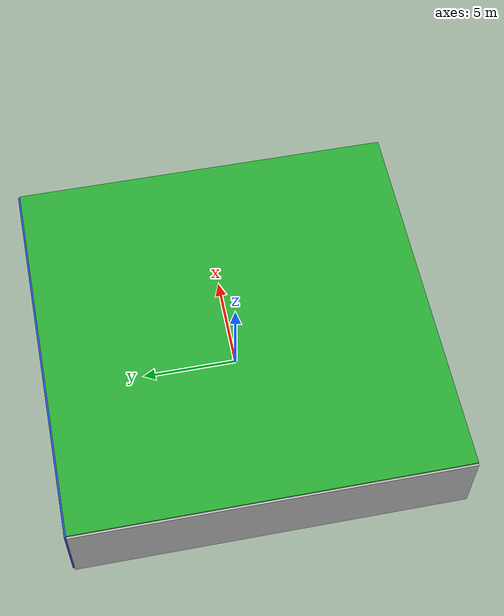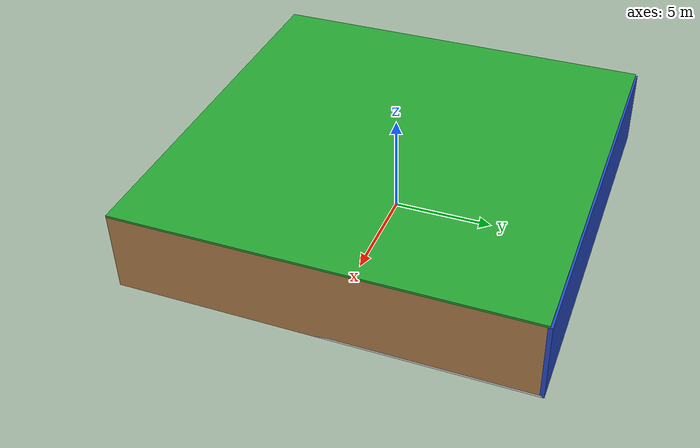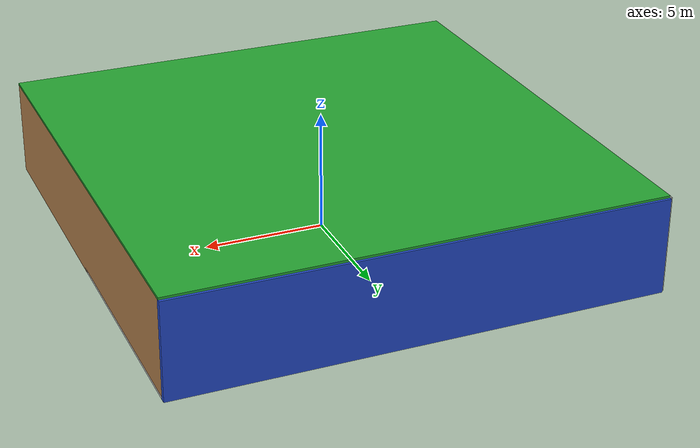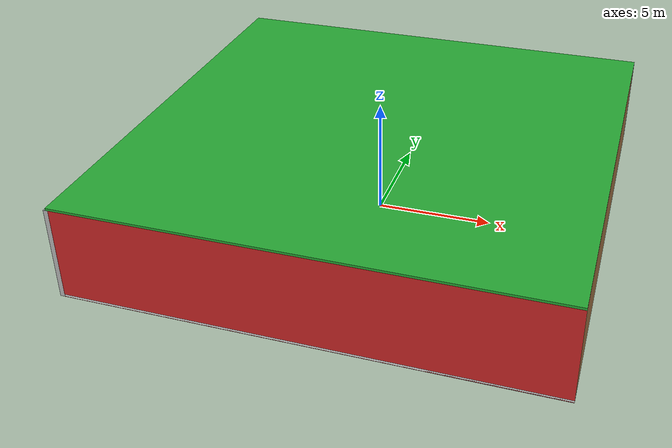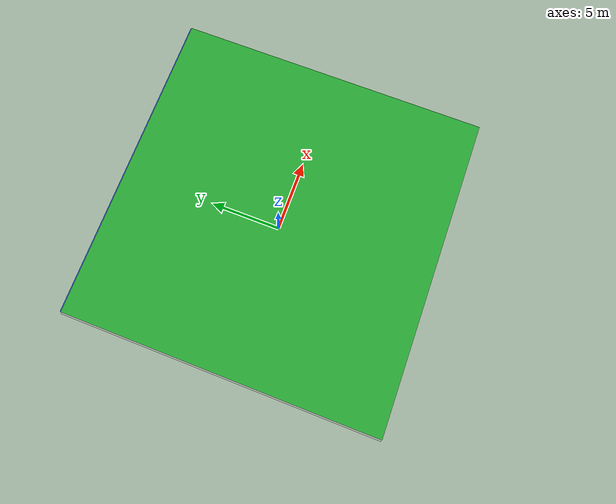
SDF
<sdf version="1.4">
 <world name="default">
  <physics type="ode">
   <max_step_size>0.001</max_step_size>
   <real_time_factor>1</real_time_factor>
   <real_time_update_rate>1000</real_time_update_rate>
   <gravity>0 0 -9.8</gravity>
  </physics>
  <scene><ambient>0.4 0.4 0.4 1</ambient><background>0.7 0.7 0.7 1</background><shadows>1</shadows></scene>
  <model name="Surrounding">
   <static>1</static>
   <link name="Ceiling">
    <collision name="Ceiling_Collision"><geometry><box><size>20 20 0.1</size></box></geometry></collision>
    <visual name="Ceiling_Visual">
     <geometry><box><size>20 20 0.1</size></box></geometry>
     <material>
      <script><uri>file://media/materials/scripts/gazebo.material</uri><name>Gazebo/GreenGlow</name></script>
     </material>
    </visual>
    <pose>0 0 4.05 0 0 0</pose>
   </link>
   <link name="Wall_South">
    <collision name="Wall_South_Collision">
     <geometry><box><size>20 0 4</size></box></geometry>
     <pose>0 0 2 0 -0 0</pose>
    </collision>
    <visual name="Wall_South_Visual">
     <pose>0 0 2 0 -0 0</pose>
     <geometry><box><size>20 0 4</size></box></geometry>
     <material>
      <script><uri>file://media/materials/scripts/gazebo.material</uri><name>Gazebo/RedBright</name></script>
     </material>
    </visual>
    <velocity_decay><linear>0</linear><angular>0</angular></velocity_decay>
    <pose>0 -10 0 0 -0 0</pose>
   </link>
   <link name="Wall_East">
    <collision name="Wall_21_Collision">
     <geometry><box><size>20 0 4</size></box></geometry>
     <pose>0 0 2 0 -0 0</pose>
    </collision>
    <visual name="Wall_21_Visual">
     <pose>0 0 2 0 -0 0</pose>
     <geometry><box><size>20 0 4</size></box></geometry>
     <material>
      <script><uri>file://media/materials/scripts/gazebo.material</uri><name>Gazebo/WoodPallet</name></script>
     </material>
    </visual>
    <velocity_decay><linear>0</linear><angular>0</angular></velocity_decay>
    <pose>10 0 0 0 -0 1.5708</pose>
   </link>
   <link name="Wall_North">
    <collision name="Wall_22_Collision">
     <geometry><box><size>20 0.2 4</size></box></geometry>
     <pose>0 0 2 0 -0 0</pose>
    </collision>
    <visual name="Wall_22_Visual">
     <pose>0 0 2 0 -0 0</pose>
     <geometry><box><size>20 0.2 4</size></box></geometry>
     <material>
      <script><uri>file://media/materials/scripts/gazebo.material</uri><name>Gazebo/BlueGlow</name></script>
     </material>
    </visual>
    <velocity_decay><linear>0</linear><angular>0</angular></velocity_decay>
    <pose>0 10 0 0 -0 0</pose>
   </link>
   <link name="Wall_West">
    <collision name="Wall_23_Collision">
     <geometry><box><size>20 0.2 4</size></box></geometry>
     <pose>0 0 2 0 -0 0</pose>
    </collision>
    <visual name="Wall_23_Visual">
     <pose>0 0 2 0 -0 0</pose>
     <geometry><box><size>20 0.2 4</size></box></geometry>
     <material>
      <script><uri>file://media/materials/scripts/gazebo.material</uri><name>Gazebo/LightOff</name></script>
     </material>
    </visual>
    <velocity_decay><linear>0</linear><angular>0</angular></velocity_decay>
    <pose>-10 0 0 0 0 -1.5708</pose>
   </link>
   <link name="Ground_link">
    <collision name="collision">
     <pose>0 0 .05 0 -0 0</pose>
     <geometry><box><size>20 20 0.1</size></box></geometry>
    </collision>
    <visual name="visual">
     <pose>0 0 .05 0 -0 0</pose>
     <geometry><box><size>20 20 0.1</size></box></geometry>
     <material>
      <script><uri>file://media/materials/scripts/gazebo.material</uri><name>Gazebo/White</name></script>
     </material>
    </visual>
   </link>
   <static>1</static>
  </model>
  <spherical_coordinates>
   <surface_model>EARTH_WGS84</surface_model>
   <latitude_deg>0</latitude_deg>
   <longitude_deg>0</longitude_deg>
   <elevation>0</elevation>
   <heading_deg>0</heading_deg>
  </spherical_coordinates>
  <light name="lightball_0" type="diffuse">
   <diffuse>0.8 0.8 0.8 1</diffuse>
   <specular>0.2 0.2 0.2 1</specular>
   <attenuation>
    <range>100</range>
    <constant>0.7</constant>
    <linear>0.01</linear>
    <quadratic>0.001</quadratic>
   </attenuation>
   <direction>-0.5 0.1 -0.9</direction>
   <pose>1.89588851692 5.2037381151 0.655257939682 0 0 0</pose>
  </light>
  <light name="lightball_1" type="diffuse">
   <diffuse>0.8 0.8 0.8 1</diffuse>
   <specular>0.2 0.2 0.2 1</specular>
   <attenuation>
    <range>100</range>
    <constant>0.7</constant>
    <linear>0.01</linear>
    <quadratic>0.001</quadratic>
   </attenuation>
   <direction>-0.5 0.1 -0.9</direction>
   <pose>-7.9566546883 -5.06341523095 1.10365518823 0 0 0</pose>
  </light>
  <light name="lightball_2" type="diffuse">
   <diffuse>0.8 0.8 0.8 1</diffuse>
   <specular>0.2 0.2 0.2 1</specular>
   <attenuation>
    <range>100</range>
    <constant>0.7</constant>
    <linear>0.01</linear>
    <quadratic>0.001</quadratic>
   </attenuation>
   <direction>-0.5 0.1 -0.9</direction>
   <pose>0.640305455092 -1.58228276388 0.539582211167 0 0 0</pose>
  </light>
  <light name="lightball_3" type="diffuse">
   <diffuse>0.8 0.8 0.8 1</diffuse>
   <specular>0.2 0.2 0.2 1</specular>
   <attenuation>
    <range>100</range>
    <constant>0.7</constant>
    <linear>0.01</linear>
    <quadratic>0.001</quadratic>
   </attenuation>
   <direction>-0.5 0.1 -0.9</direction>
   <pose>1.58287570362 -1.64407538414 3.64012470943 0 0 0</pose>
  </light>
  <light name="lightball_4" type="diffuse">
   <diffuse>0.8 0.8 0.8 1</diffuse>
   <specular>0.2 0.2 0.2 1</specular>
   <attenuation>
    <range>100</range>
    <constant>0.7</constant>
    <linear>0.01</linear>
    <quadratic>0.001</quadratic>
   </attenuation>
   <direction>-0.5 0.1 -0.9</direction>
   <pose>-3.55629008289 4.69993237804 1.40475894437 0 0 0</pose>
  </light>
  <light name="lightball_5" type="diffuse">
   <diffuse>0.8 0.8 0.8 1</diffuse>
   <specular>0.2 0.2 0.2 1</specular>
   <attenuation>
    <range>100</range>
    <constant>0.7</constant>
    <linear>0.01</linear>
    <quadratic>0.001</quadratic>
   </attenuation>
   <direction>-0.5 0.1 -0.9</direction>
   <pose>-6.37187548416 9.11452215034 1.61093923717 0 0 0</pose>
  </light>
  <include><uri>model://cabinet</uri><pose>-7.23088412858 2.61108496795 0 0 0 1.21390704371</pose></include>
  <include><uri>model://cabinet</uri><pose>-3.30625300994 -7.33004676195 0 0 0 1.83183008751</pose></include>
  <include><uri>model://cabinet</uri><pose>-3.58296735545 -1.24281193573 0 0 0 0.720528083896</pose></include>
  <include><uri>model://cabinet</uri><pose>-0.673687930699 -0.405020575589 0 0 0 1.93271963089</pose></include>
  <include>
   <uri>model://construction_cone</uri>
   <pose>-1.58554037107 0.723905280589 0 0 0 2.66923826405</pose>
  </include>
  <include><uri>model://table</uri><pose>0.750480026906 -4.76390861209 0 0 0 0.417428831047</pose></include>
  <include>
   <uri>model://robocup_3Dsim_goal</uri>
   <pose>3.3318844092 4.88738775713 0 0 0 0.521535987305</pose>
  </include>
  <include><uri>model://table</uri><pose>8.33603374962 -7.31548140349 0 0 0 3.06544157753</pose></include>
  <include><uri>model://cabinet</uri><pose>7.69743438303 3.85655140505 0 0 0 2.6776758056</pose></include>
 </world>
</sdf>

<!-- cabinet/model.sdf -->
<sdf version="1.5">
  <model name="cabinet">
    <static>true</static>
    <link name="cabinet_bottom_plate">
      <inertial>
        <pose>0 0 -1 0 0 0</pose>
        <inertia>
          <ixx>2.050000</ixx>
          <ixy>0</ixy>
          <ixz>0</ixz>
          <iyy>2.050000</iyy>
          <iyz>0</iyz>
          <izz>2.050000</izz>
        </inertia>
        <mass>25.000000</mass>
      </inertial>
      <collision name="cabinet_bottom_plate_geom">
        <pose>0 0 0.010000 0 0 0</pose>
        <geometry>
          <box>
            <size>0.450000 0.450000 0.020000</size>
          </box>
        </geometry>
      </collision>
      <visual name="cabinet_bottom_plate_geom_visual">
        <pose>0 0 0.010000 0 0 0</pose>
        <geometry>
          <box>
            <size>0.450000 0.450000 0.020000</size>
          </box>
        </geometry>
        <material>
          <script>
            <uri>model://media/materials/scripts/gazebo.material</uri>
            <name>Gazebo/Wood</name>
          </script>
        </material>
      </visual>
      <collision name="cabinet_bottom_plate_geom_cabinet_back_plate">
        <pose>0.235000 0 0.510000 0 0 0</pose>
        <geometry>
          <box>
            <size>0.020000 0.450000 1.020000</size>
          </box>
        </geometry>
      </collision>
      <visual name="cabinet_bottom_plate_geom_cabinet_back_plate_visual">
        <pose>0.235000 0 0.510000 0 0 0</pose>
        <geometry>
          <box>
            <size>0.020000 0.450000 1.020000</size>
          </box>
        </geometry>
        <material>
          <script>
            <uri>model://media/materials/scripts/gazebo.material</uri>
            <name>Gazebo/Wood</name>
          </script>
        </material>
      </visual>
      <collision name="cabinet_bottom_plate_geom_cabinet_left_plate">
        <pose>0 0.235000 0.510000 0 0 0</pose>
        <geometry>
          <box>
            <size>0.450000 0.020000 1.020000</size>
          </box>
        </geometry>
      </collision>
      <visual name="cabinet_bottom_plate_geom_cabinet_left_plate_visual">
        <pose>0 0.235000 0.510000 0 0 0</pose>
        <geometry>
          <box>
            <size>0.450000 0.020000 1.020000</size>
          </box>
        </geometry>
        <material>
          <script>
            <uri>model://media/materials/scripts/gazebo.material</uri>
            <name>Gazebo/Wood</name>
          </script>
        </material>
      </visual>
      <collision name="cabinet_bottom_plate_geom_cabinet_middle_plate">
        <pose>0 0 0.510000 0 0 0</pose>
        <geometry>
          <box>
            <size>0.450000 0.450000 0.020000</size>
          </box>
        </geometry>
      </collision>
      <visual name="cabinet_bottom_plate_geom_cabinet_middle_plate_visual">
        <pose>0 0 0.510000 0 0 0</pose>
        <geometry>
          <box>
            <size>0.450000 0.450000 0.020000</size>
          </box>
        </geometry>
        <material>
          <script>
            <uri>model://media/materials/scripts/gazebo.material</uri>
            <name>Gazebo/Wood</name>
          </script>
        </material>
      </visual>
      <collision name="cabinet_bottom_plate_geom_cabinet_right_plate">
        <pose>0 -0.235000 0.510000 0 0 0</pose>
        <geometry>
          <box>
            <size>0.450000 0.020000 1.020000</size>
          </box>
        </geometry>
      </collision>
      <visual name="cabinet_bottom_plate_geom_cabinet_right_plate_visual">
        <pose>0 -0.235000 0.510000 0 0 0</pose>
        <geometry>
          <box>
            <size>0.450000 0.020000 1.020000</size>
          </box>
        </geometry>
        <material>
          <script>
            <uri>model://media/materials/scripts/gazebo.material</uri>
            <name>Gazebo/Wood</name>
          </script>
        </material>
      </visual>
      <collision name="cabinet_bottom_plate_geom_cabinet_top_plate">
        <pose>0 0 1.010000 0 0 0</pose>
        <geometry>
          <box>
            <size>0.450000 0.450000 0.020000</size>
          </box>
        </geometry>
      </collision>
      <visual name="cabinet_bottom_plate_geom_cabinet_top_plate_visual">
        <pose>0 0 1.010000 0 0 0</pose>
        <geometry>
          <box>
            <size>0.450000 0.450000 0.020000</size>
          </box>
        </geometry>
        <material>
          <script>
            <uri>model://media/materials/scripts/gazebo.material</uri>
            <name>Gazebo/Wood</name>
          </script>
        </material>
      </visual>
    </link>
  </model>
</sdf>

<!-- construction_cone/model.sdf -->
<sdf version="1.5">
  <model name="Construction Cone">
    <link name="link">
      <collision name="collision">
        <geometry>
          <mesh>
            <scale>10 10 10</scale>
            <uri>file://isr-testbed/construction_cone/meshes/construction_cone.dae</uri>
          </mesh>
        </geometry>
      </collision>
      <visual name="visual">
        <geometry>
          <mesh>
            <scale>10 10 10</scale>
            <uri>file://isr-testbed/construction_cone/meshes/construction_cone.dae</uri>
          </mesh>
        </geometry>
      </visual>
    </link>
  </model>
</sdf>

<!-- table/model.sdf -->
<sdf version="1.5">
  <model name="table">
    <static>true</static>
    <link name="link">
      <collision name="surface">
        <pose>0 0 1.0 0 0 0</pose>
        <geometry>
          <box>
            <size>1.5 0.8 0.03</size>
          </box>
        </geometry>
        <surface>
          <friction>
            <ode>
              <mu>0.6</mu>
              <mu2>0.6</mu2>
            </ode>
          </friction>
        </surface>
      </collision>
      <visual name="visual1">
        <pose>0 0 1.0 0 0 0</pose>
        <geometry>
          <box>
            <size>1.5 0.8 0.03</size>
          </box>
        </geometry>
        <material>
          <script>
            <uri>model://media/materials/scripts/gazebo.material</uri>
            <name>Gazebo/Wood</name>
          </script>
        </material>
      </visual>
      <collision name="front_left_leg">
        <pose>0.68 0.38 0.5 0 0 0</pose>
        <geometry>
          <cylinder>
            <radius>0.02</radius>
            <length>1.0</length>
          </cylinder>
        </geometry>
      </collision>
      <visual name="front_left_leg">
        <pose>0.68 0.38 0.5 0 0 0</pose>
        <geometry>
          <cylinder>
            <radius>0.02</radius>
            <length>1.0</length>
          </cylinder>
        </geometry>
        <material>
          <script>
            <uri>model://media/materials/scripts/gazebo.material</uri>
            <name>Gazebo/Grey</name>
          </script>
        </material>
      </visual>
      <collision name="front_right_leg">
        <pose>0.68 -0.38 0.5 0 0 0</pose>
        <geometry>
          <cylinder>
            <radius>0.02</radius>
            <length>1.0</length>
          </cylinder>
        </geometry>
      </collision>
      <visual name="front_right_leg">
        <pose>0.68 -0.38 0.5 0 0 0</pose>
        <geometry>
          <cylinder>
            <radius>0.02</radius>
            <length>1.0</length>
          </cylinder>
        </geometry>
        <material>
          <script>
            <uri>model://media/materials/scripts/gazebo.material</uri>
            <name>Gazebo/Grey</name>
          </script>
        </material>
      </visual>
      <collision name="back_right_leg">
        <pose>-0.68 -0.38 0.5 0 0 0</pose>
        <geometry>
          <cylinder>
            <radius>0.02</radius>
            <length>1.0</length>
          </cylinder>
        </geometry>
      </collision>
      <visual name="back_right_leg">
        <pose>-0.68 -0.38 0.5 0 0 0</pose>
        <geometry>
          <cylinder>
            <radius>0.02</radius>
            <length>1.0</length>
          </cylinder>
        </geometry>
        <material>
          <script>
            <uri>model://media/materials/scripts/gazebo.material</uri>
            <name>Gazebo/Grey</name>
          </script>
        </material>
      </visual>
      <collision name="back_left_leg">
        <pose>-0.68 0.38 0.5 0 0 0</pose>
        <geometry>
          <cylinder>
            <radius>0.02</radius>
            <length>1.0</length>
          </cylinder>
        </geometry>
      </collision>
      <visual name="back_left_leg">
        <pose>-0.68 0.38 0.5 0 0 0</pose>
        <geometry>
          <cylinder>
            <radius>0.02</radius>
            <length>1.0</length>
          </cylinder>
        </geometry>
        <material>
          <script>
            <uri>model://media/materials/scripts/gazebo.material</uri>
            <name>Gazebo/Grey</name>
          </script>
        </material>
      </visual>
    </link>
  </model>
</sdf>

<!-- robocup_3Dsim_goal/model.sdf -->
<sdf version="1.5">
  <model name="robocup_3d_goal">
    <static>true</static>
    <link name="left_post">
      <pose>0 1.05 0.45 0 0 0</pose>
      <collision name="collision">
        <geometry>
          <cylinder>
            <radius>0.05</radius>
            <length>0.9</length>
          </cylinder>
        </geometry>
      </collision>
      <visual name="visual">
        <geometry>
          <cylinder>
            <radius>0.05</radius>
            <length>0.9</length>
          </cylinder>
        </geometry>
        <material>
          <script>
            <uri>file://media/materials/scripts/gazebo.material</uri>
            <name>Gazebo/ZincYellow</name>
          </script>
        </material>
      </visual>
    </link>
    <link name="left_support_horiz_lower">
      <pose>0.30 1.05 0.01 0 0 0</pose>
      <collision name="collision">
        <geometry>
          <box>
            <size>0.50 0.02 0.02</size>
          </box>
        </geometry>
      </collision>
      <visual name="visual">
        <geometry>
          <box>
            <size>0.50 0.02 0.02</size>
          </box>
        </geometry>
        <material>
          <script>
            <uri>file://media/materials/scripts/gazebo.material</uri>
            <name>Gazebo/White</name>
          </script>
        </material>
      </visual>
    </link>
    <link name="left_support_horiz_upper">
      <pose>0.30 1.05 0.79 0 0 0</pose>
      <collision name="collision">
        <geometry>
          <box>
            <size>0.50 0.02 0.02</size>
          </box>
        </geometry>
      </collision>
      <visual name="visual">
        <geometry>
          <box>
            <size>0.50 0.02 0.02</size>
          </box>
        </geometry>
        <material>
          <script>
            <uri>file://media/materials/scripts/gazebo.material</uri>
            <name>Gazebo/White</name>
          </script>
        </material>
      </visual>
    </link>
    <link name="left_support_vertical">
      <pose>0.56 1.05 0.4 0 1.5708 0</pose>
      <collision name="collision">
        <geometry>
          <box>
            <size>0.80 0.02 0.02</size>
          </box>
        </geometry>
      </collision>
      <visual name="visual">
        <geometry>
          <box>
            <size>0.80 0.02 0.02</size>
          </box>
        </geometry>
        <material>
          <script>
            <uri>file://media/materials/scripts/gazebo.material</uri>
            <name>Gazebo/White</name>
          </script>
        </material>
      </visual>
    </link>
    <link name="right_support_horiz_lower">
      <pose>0.30 -1.05 0.01 0 0 0</pose>
      <collision name="collision">
        <geometry>
          <box>
            <size>0.50 0.02 0.02</size>
          </box>
        </geometry>
      </collision>
      <visual name="visual">
        <geometry>
          <box>
            <size>0.50 0.02 0.02</size>
          </box>
        </geometry>
        <material>
          <script>
            <uri>file://media/materials/scripts/gazebo.material</uri>
            <name>Gazebo/White</name>
          </script>
        </material>
      </visual>
    </link>
    <link name="right_support_horiz_upper">
      <pose>0.30 -1.05 0.79 0 0 0</pose>
      <collision name="collision">
        <geometry>
          <box>
            <size>0.50 0.02 0.02</size>
          </box>
        </geometry>
      </collision>
      <visual name="visual">
        <geometry>
          <box>
            <size>0.50 0.02 0.02</size>
          </box>
        </geometry>
        <material>
          <script>
            <uri>file://media/materials/scripts/gazebo.material</uri>
            <name>Gazebo/White</name>
          </script>
        </material>
      </visual>
    </link>
    <link name="right_support_vertical">
      <pose>0.56 -1.05 0.4 0 1.5708 0</pose>
      <collision name="collision">
        <geometry>
          <box>
            <size>0.80 0.02 0.02</size>
          </box>
        </geometry>
      </collision>
      <visual name="visual">
        <geometry>
          <box>
            <size>0.80 0.02 0.02</size>
          </box>
        </geometry>
        <material>
          <script>
            <uri>file://media/materials/scripts/gazebo.material</uri>
            <name>Gazebo/White</name>
          </script>
        </material>
      </visual>
    </link>
    <link name="center_support_horiz_lower">
      <pose>0.56 0 0.01 0 1.5708 0</pose>
      <collision name="collision">
        <geometry>
          <box>
            <size>0.02 2.08 0.02</size>
          </box>
        </geometry>
      </collision>
      <visual name="visual">
        <geometry>
          <box>
            <size>0.02 2.08 0.02</size>
          </box>
        </geometry>
        <material>
          <script>
            <uri>file://media/materials/scripts/gazebo.material</uri>
            <name>Gazebo/White</name>
          </script>
        </material>
      </visual>
    </link>
    <link name="center_support_horiz_upper">
      <pose>0.56 0 0.79 0 1.5708 0</pose>
      <collision name="collision">
        <geometry>
          <box>
            <size>0.02 2.08 0.02</size>
          </box>
        </geometry>
      </collision>
      <visual name="visual">
        <geometry>
          <box>
            <size>0.02 2.08 0.02</size>
          </box>
        </geometry>
        <material>
          <script>
            <uri>file://media/materials/scripts/gazebo.material</uri>
            <name>Gazebo/White</name>
          </script>
        </material>
      </visual>
    </link>
    <link name="right_post">
      <pose>0 -1.05 0.45 0 0 0</pose>
      <collision name="collision">
        <geometry>
          <cylinder>
            <radius>0.05</radius>
            <length>0.9</length>
          </cylinder>
        </geometry>
      </collision>
      <visual name="visual">
        <geometry>
          <cylinder>
            <radius>0.05</radius>
            <length>0.9</length>
          </cylinder>
        </geometry>
        <material>
          <script>
            <uri>file://media/materials/scripts/gazebo.material</uri>
            <name>Gazebo/ZincYellow</name>
          </script>
        </material>
      </visual>
    </link>
    <link name="crossbar">
      <pose>0 0 0.85 1.57 1.57 0</pose>
      <collision name="collision">
        <geometry>
          <cylinder>
            <radius>0.05</radius>
            <length>2.0</length>
          </cylinder>
        </geometry>
      </collision>
      <visual name="visual">
        <geometry>
          <cylinder>
            <radius>0.05</radius>
            <length>2.0</length>
          </cylinder>
        </geometry>
        <material>
          <script>
            <uri>file://media/materials/scripts/gazebo.material</uri>
            <name>Gazebo/ZincYellow</name>
          </script>
        </material>
      </visual>
    </link>
    <link name="center_net">
      <pose>0.56 0 0.40 0 0 0</pose>
      <collision name="collision">
        <geometry>
          <box>
            <size>0.01 2.1 0.80</size>
          </box>
        </geometry>
      </collision>
      <visual name="visual">
        <geometry>
          <box>
            <size>0.01 2.1 0.80</size>
          </box>
        </geometry>
        <material>
          <script>
            <uri>model://../model_source/models/robocup09_spl_field/materials/scripts/</uri>
            <uri>model://../model_source/models/robocup09_spl_field/materials/textures/</uri>
            <name>RoboCup/Net</name>
          </script>
        </material>
      </visual>
    </link>
    <link name="left_net">
      <pose>0.30 1.05 0.40 0 0 0</pose>
      <collision name="collision">
        <geometry>
          <box>
            <size>0.50 0.01 0.76</size>
          </box>
        </geometry>
      </collision>
      <visual name="visual">
        <geometry>
          <box>
            <size>0.50 0.01 0.76</size>
          </box>
        </geometry>
        <material>
          <script>
            <uri>model://../model_source/models/robocup09_spl_field/materials/scripts/</uri>
            <uri>model://../model_source/models/robocup09_spl_field/materials/textures/</uri>
            <name>RoboCup/Net</name>
          </script>
        </material>
      </visual>
    </link>
    <link name="right_net">
      <pose>0.30 -1.05 0.40 0 0 0</pose>
      <collision name="collision">
        <geometry>
          <box>
            <size>0.50 0.01 0.76</size>
          </box>
        </geometry>
      </collision>
      <visual name="visual">
        <geometry>
          <box>
            <size>0.50 0.01 0.76</size>
          </box>
        </geometry>
        <material>
          <script>
            <uri>model://../model_source/models/robocup09_spl_field/materials/scripts/</uri>
            <uri>model://../model_source/models/robocup09_spl_field/materials/textures/</uri>
            <name>RoboCup/Net</name>
          </script>
        </material>
      </visual>
    </link>
  </model>
</sdf>
